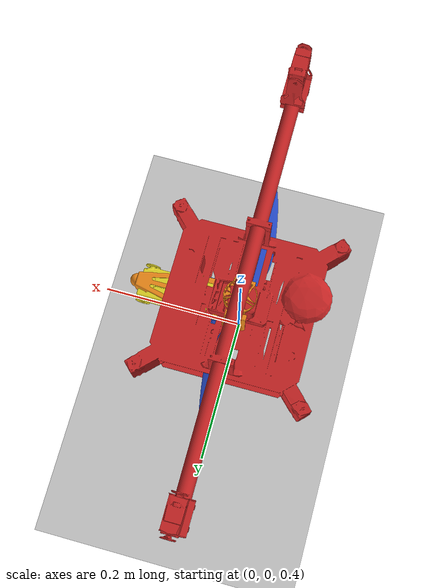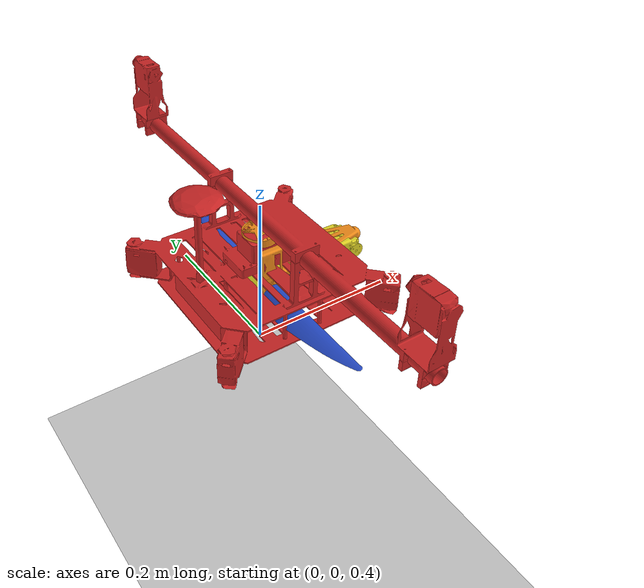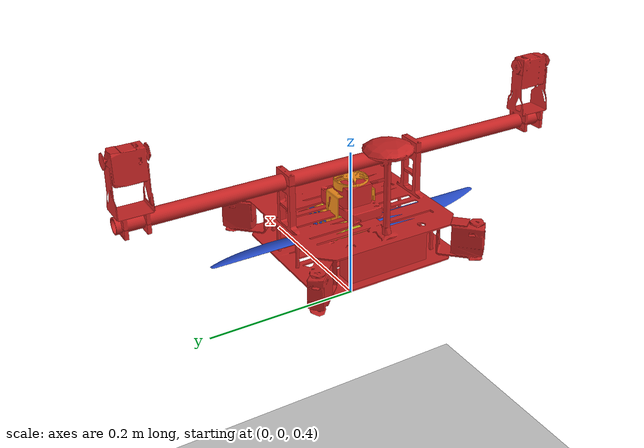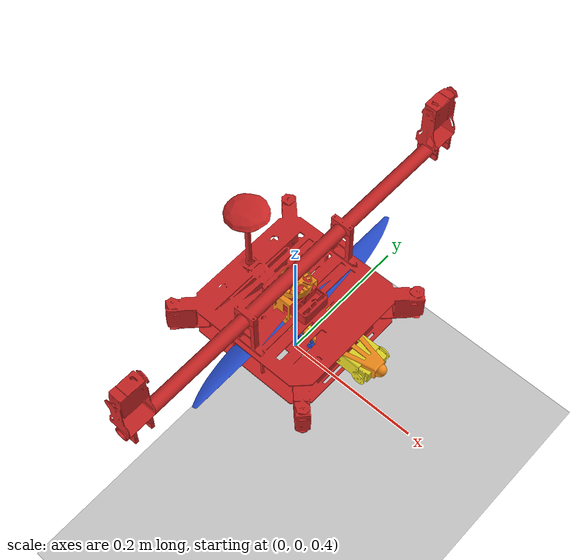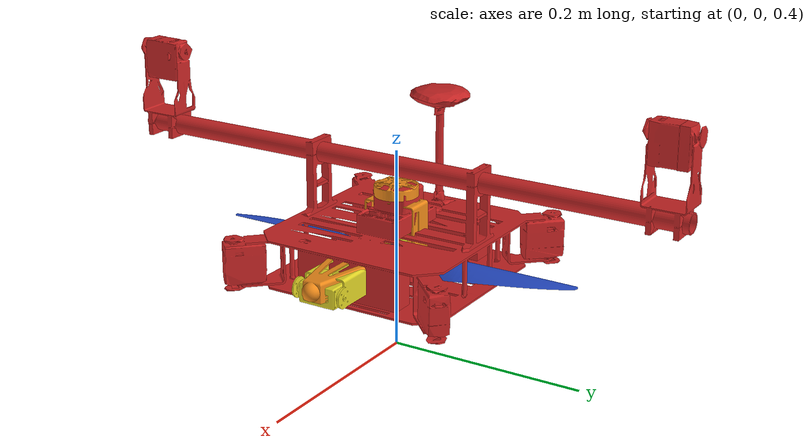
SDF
<?xml version="1.0" ?>
<sdf version="1.4">
  <world name="outdoor">

    <!-- Only one ROS interface plugin is required per world, as any other plugin can connect a Gazebo
         topic to a ROS topic (or vise versa). -->
    <plugin name="ros_interface_plugin" filename="librotors_gazebo_ros_interface_plugin.so"/>

    <physics type="ode">
      <ode>
        <solver>
          <type>quick</type>
          <iters>100</iters>
          <sor>1.0</sor>
        </solver>
        <constraints>
          <cfm>0.0</cfm>
          <erp>0.2</erp>
          <contact_max_correcting_vel>0.1</contact_max_correcting_vel>
          <contact_surface_layer>0.0</contact_surface_layer>
        </constraints>
      </ode>
      <real_time_update_rate>-1</real_time_update_rate> <!--  即模拟时间与实时的比率 -->
    </physics>
    <gravity>0 0 -9.8</gravity>

    <include>
      <uri>model://sun</uri>
    </include>

    <include>
      <uri>model://ground_plane</uri>
      <surface>
            <friction>
              <ode>
                <mu>1</mu>
                <mu2>0.9</mu2>
              </ode>
              <torsional>
                <ode/>
              </torsional>
            </friction>
            <contact>
              <ode/>
            </contact>
            <bounce/>
          </surface>
          <max_contacts>10</max_contacts>
    </include>

    <model name="usl_quadruped2_bicopter">
      <pose>0 0 0.5 0 0 0</pose>
      <include>
        <uri>model://usl_quadruped2_bicopter</uri>
        <name>usl_quadruped2_bicopter</name>
      </include>
    </model>

  </world>
</sdf>

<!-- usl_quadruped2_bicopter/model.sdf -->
<sdf version="1.5">
    <model name="usl_quadruped2_bicopter">

      <include>
        <uri>model://usl_quadruped2_bicopter_base</uri>
        <name>usl_quadruped2_bicopter_base</name>
        <pose>0 0 0.0 0 0 0</pose>
      </include>

      <include>
        <uri>model://usl_quadruped2_bicopter_coxa</uri>
        <name>quadruped2_coxa_0 </name>
        <pose relative_to= "quadruped2_coxa_0_joint" > 0 0 0 0 0 0</pose>
      </include>
      <joint name = "quadruped2_coxa_0_joint" type="revolute">
        <pose relative_to= 'usl_quadruped2_bicopter_base::base'> 0.11192 -0.11192 0.0 0.0 0.0 -0.7853981633974483</pose>
        <parent>usl_quadruped2_bicopter_base::base</parent>
        <child>quadruped2_coxa_0::base</child>
        <axis>
          <xyz>0 0 -1</xyz>
          <limit>
            <lower>-1.5707963267948966</lower>
            <upper>1.5707963267948966</upper>
          </limit>
          <dynamics>
            <spring_reference>0</spring_reference>
            <spring_stiffness>0</spring_stiffness>
          </dynamics>
        </axis>
        <physics>
          <ode>
            <limit>
              <cfm>0</cfm>
              <erp>0.2</erp>
            </limit>
          </ode>
        </physics>
      </joint>
      <plugin name = "quadruped2_coxa_0_plugin" filename='librotors_gazebo_motor_model.so'>
        <robotNamespace></robotNamespace>
        <jointName>quadruped2_coxa_0_joint </jointName>
        <linkName>quadruped2_coxa_0::base</linkName>
        <turningDirection>cw</turningDirection>
        <motorType>position</motorType>
        <commandSubTopic>/gazebo/command/coxa_pos</commandSubTopic>
        <motorNumber>0</motorNumber>
        <motorSpeedPubTopic>coxa_pos/0</motorSpeedPubTopic>
        <joint_control_pid>
          <p>15</p>
          <i>5</i>
          <d>0.6</d>
          <iMax>10</iMax>
          <iMin>-10</iMin>
          <cmdMax>50</cmdMax>
          <cmdMin>-50</cmdMin>
        </joint_control_pid>
      </plugin>

      <include>
        <uri>model://usl_quadruped2_bicopter_coxa</uri>
        <name>quadruped2_coxa_1 </name>
        <pose relative_to= "quadruped2_coxa_1_joint" > 0 0 0 0 0 0</pose>
      </include>
      <joint name = "quadruped2_coxa_1_joint" type="revolute">
        <pose relative_to= 'usl_quadruped2_bicopter_base::base'> -0.11192 -0.11192 0.0 0.0 0.0 -2.356194490192345</pose>
        <parent>usl_quadruped2_bicopter_base::base</parent>
        <child>quadruped2_coxa_1::base</child>
        <axis>
          <xyz>0 0 -1</xyz>
          <limit>
            <lower>-1.5707963267948966</lower>
            <upper>1.5707963267948966</upper>
          </limit>
          <dynamics>
            <spring_reference>0</spring_reference>
            <spring_stiffness>0</spring_stiffness>
          </dynamics>
        </axis>
        <physics>
          <ode>
            <limit>
              <cfm>0</cfm>
              <erp>0.2</erp>
            </limit>
          </ode>
        </physics>
      </joint>
      <plugin name = "quadruped2_coxa_1_plugin" filename='librotors_gazebo_motor_model.so'>
        <robotNamespace></robotNamespace>
        <jointName>quadruped2_coxa_1_joint </jointName>
        <linkName>quadruped2_coxa_1::base</linkName>
        <turningDirection>cw</turningDirection>
        <motorType>position</motorType>
        <commandSubTopic>/gazebo/command/coxa_pos</commandSubTopic>
        <motorNumber>1</motorNumber>
        <motorSpeedPubTopic>coxa_pos/1</motorSpeedPubTopic>
        <joint_control_pid>
          <p>15</p>
          <i>5</i>
          <d>0.6</d>
          <iMax>10</iMax>
          <iMin>-10</iMin>
          <cmdMax>50</cmdMax>
          <cmdMin>-50</cmdMin>
        </joint_control_pid>
      </plugin>

      <include>
        <uri>model://usl_quadruped2_bicopter_coxa</uri>
        <name>quadruped2_coxa_2 </name>
        <pose relative_to= "quadruped2_coxa_2_joint" > 0 0 0 0 0 0</pose>
      </include>
      <joint name = "quadruped2_coxa_2_joint" type="revolute">
        <pose relative_to= 'usl_quadruped2_bicopter_base::base'> -0.11192 0.11192 0.0 0.0 0.0 -3.9269908169872414</pose>
        <parent>usl_quadruped2_bicopter_base::base</parent>
        <child>quadruped2_coxa_2::base</child>
        <axis>
          <xyz>0 0 -1</xyz>
          <limit>
            <lower>-1.5707963267948966</lower>
            <upper>1.5707963267948966</upper>
          </limit>
          <dynamics>
            <spring_reference>0</spring_reference>
            <spring_stiffness>0</spring_stiffness>
          </dynamics>
        </axis>
        <physics>
          <ode>
            <limit>
              <cfm>0</cfm>
              <erp>0.2</erp>
            </limit>
          </ode>
        </physics>
      </joint>
      <plugin name = "quadruped2_coxa_2_plugin" filename='librotors_gazebo_motor_model.so'>
        <robotNamespace></robotNamespace>
        <jointName>quadruped2_coxa_2_joint </jointName>
        <linkName>quadruped2_coxa_2::base</linkName>
        <turningDirection>cw</turningDirection>
        <motorType>position</motorType>
        <commandSubTopic>/gazebo/command/coxa_pos</commandSubTopic>
        <motorNumber>2</motorNumber>
        <motorSpeedPubTopic>coxa_pos/2</motorSpeedPubTopic>
        <joint_control_pid>
          <p>15</p>
          <i>5</i>
          <d>0.6</d>
          <iMax>10</iMax>
          <iMin>-10</iMin>
          <cmdMax>50</cmdMax>
          <cmdMin>-50</cmdMin>
        </joint_control_pid>
      </plugin>

      <include>
        <uri>model://usl_quadruped2_bicopter_coxa</uri>
        <name>quadruped2_coxa_3 </name>
        <pose relative_to= "quadruped2_coxa_3_joint" > 0 0 0 0 0 0</pose>
      </include>
      <joint name = "quadruped2_coxa_3_joint" type="revolute">
        <pose relative_to= 'usl_quadruped2_bicopter_base::base'> 0.11192 0.11192 0.0 0.0 0.0 -5.497787143782138</pose>
        <parent>usl_quadruped2_bicopter_base::base</parent>
        <child>quadruped2_coxa_3::base</child>
        <axis>
          <xyz>0 0 -1</xyz>
          <limit>
            <lower>-1.5707963267948966</lower>
            <upper>1.5707963267948966</upper>
          </limit>
          <dynamics>
            <spring_reference>0</spring_reference>
            <spring_stiffness>0</spring_stiffness>
          </dynamics>
        </axis>
        <physics>
          <ode>
            <limit>
              <cfm>0</cfm>
              <erp>0.2</erp>
            </limit>
          </ode>
        </physics>
      </joint>
      <plugin name = "quadruped2_coxa_3_plugin" filename='librotors_gazebo_motor_model.so'>
        <robotNamespace></robotNamespace>
        <jointName>quadruped2_coxa_3_joint </jointName>
        <linkName>quadruped2_coxa_3::base</linkName>
        <turningDirection>cw</turningDirection>
        <motorType>position</motorType>
        <commandSubTopic>/gazebo/command/coxa_pos</commandSubTopic>
        <motorNumber>3</motorNumber>
        <motorSpeedPubTopic>coxa_pos/3</motorSpeedPubTopic>
        <joint_control_pid>
          <p>15</p>
          <i>5</i>
          <d>0.6</d>
          <iMax>10</iMax>
          <iMin>-10</iMin>
          <cmdMax>50</cmdMax>
          <cmdMin>-50</cmdMin>
        </joint_control_pid>
      </plugin>

    <include>
      <uri>model://usl_quadruped2_bicopter_femur</uri>
      <name>quadruped2_femur_0</name>
      <pose relative_to= "quadruped2_femur_0_joint" > 0 0 0 0 0 0</pose>
    </include>
    <joint name = "quadruped2_femur_0_joint" type="revolute">
      <pose relative_to= "quadruped2_coxa_0::base" > 0.0471 0.0 0.0 0.0 0.0 0</pose>
      <parent>quadruped2_coxa_0::base</parent>
      <child>quadruped2_femur_0::base</child>
      <axis>
        <xyz>0 1 0</xyz>
        <limit>
          <lower>-1.5707963267948966</lower>
          <upper>1.5707963267948966</upper>
        </limit>
        <dynamics>
          <spring_stiffness>0</spring_stiffness>
          <spring_reference>0</spring_reference>
        </dynamics>
      </axis>
      <physics>
        <ode>
          <limit>
            <cfm>0</cfm>
            <erp>0.2</erp>
          </limit>
        </ode>
      </physics>
    </joint>
    <plugin name = "quadruped2_femur_0_plugin" filename='librotors_gazebo_motor_model.so'>
      <robotNamespace></robotNamespace>
      <jointName>quadruped2_femur_0_joint </jointName>
      <linkName>quadruped2_femur_0::base</linkName>
      <turningDirection>cw</turningDirection>
      <motorType>position</motorType>
      <commandSubTopic>/gazebo/command/femur_pos</commandSubTopic>
      <motorNumber>0</motorNumber>
      <motorSpeedPubTopic>femur_pos/0</motorSpeedPubTopic>
      <joint_control_pid>
        <p>10</p>
        <i>3</i>
        <d>0.6</d>
        <iMax>10</iMax>
        <iMin>-10</iMin>
        <cmdMax>50</cmdMax>
        <cmdMin>-50</cmdMin>
      </joint_control_pid>
    </plugin>

    <include>
      <uri>model://usl_quadruped2_bicopter_femur</uri>
      <name>quadruped2_femur_1</name>
      <pose relative_to= "quadruped2_femur_1_joint" > 0 0 0 0 0 0</pose>
    </include>
    <joint name = "quadruped2_femur_1_joint" type="revolute">
      <pose relative_to= "quadruped2_coxa_1::base" > 0.0471 0.0 0.0 0.0 0.0 0</pose>
      <parent>quadruped2_coxa_1::base</parent>
      <child>quadruped2_femur_1::base</child>
      <axis>
        <xyz>0 1 0</xyz>
        <limit>
          <lower>-1.5707963267948966</lower>
          <upper>1.5707963267948966</upper>
        </limit>
        <dynamics>
          <spring_stiffness>0</spring_stiffness>
          <spring_reference>0</spring_reference>
        </dynamics>
      </axis>
      <physics>
        <ode>
          <limit>
            <cfm>0</cfm>
            <erp>0.2</erp>
          </limit>
        </ode>
      </physics>
    </joint>
    <plugin name = "quadruped2_femur_1_plugin" filename='librotors_gazebo_motor_model.so'>
      <robotNamespace></robotNamespace>
      <jointName>quadruped2_femur_1_joint </jointName>
      <linkName>quadruped2_femur_1::base</linkName>
      <turningDirection>cw</turningDirection>
      <motorType>position</motorType>
      <commandSubTopic>/gazebo/command/femur_pos</commandSubTopic>
      <motorNumber>1</motorNumber>
      <motorSpeedPubTopic>femur_pos/1</motorSpeedPubTopic>
      <joint_control_pid>
        <p>10</p>
        <i>3</i>
        <d>0.6</d>
        <iMax>10</iMax>
        <iMin>-10</iMin>
        <cmdMax>50</cmdMax>
        <cmdMin>-50</cmdMin>
      </joint_control_pid>
    </plugin>

    <include>
      <uri>model://usl_quadruped2_bicopter_femur</uri>
      <name>quadruped2_femur_2</name>
      <pose relative_to= "quadruped2_femur_2_joint" > 0 0 0 0 0 0</pose>
    </include>
    <joint name = "quadruped2_femur_2_joint" type="revolute">
      <pose relative_to= "quadruped2_coxa_2::base" > 0.0471 0.0 0.0 0.0 0.0 0</pose>
      <parent>quadruped2_coxa_2::base</parent>
      <child>quadruped2_femur_2::base</child>
      <axis>
        <xyz>0 1 0</xyz>
        <limit>
          <lower>-1.5707963267948966</lower>
          <upper>1.5707963267948966</upper>
        </limit>
        <dynamics>
          <spring_stiffness>0</spring_stiffness>
          <spring_reference>0</spring_reference>
        </dynamics>
      </axis>
      <physics>
        <ode>
          <limit>
            <cfm>0</cfm>
            <erp>0.2</erp>
          </limit>
        </ode>
      </physics>
    </joint>
    <plugin name = "quadruped2_femur_2_plugin" filename='librotors_gazebo_motor_model.so'>
      <robotNamespace></robotNamespace>
      <jointName>quadruped2_femur_2_joint </jointName>
      <linkName>quadruped2_femur_2::base</linkName>
      <turningDirection>cw</turningDirection>
      <motorType>position</motorType>
      <commandSubTopic>/gazebo/command/femur_pos</commandSubTopic>
      <motorNumber>2</motorNumber>
      <motorSpeedPubTopic>femur_pos/2</motorSpeedPubTopic>
      <joint_control_pid>
        <p>10</p>
        <i>3</i>
        <d>0.6</d>
        <iMax>10</iMax>
        <iMin>-10</iMin>
        <cmdMax>50</cmdMax>
        <cmdMin>-50</cmdMin>
      </joint_control_pid>
    </plugin>

    <include>
      <uri>model://usl_quadruped2_bicopter_femur</uri>
      <name>quadruped2_femur_3</name>
      <pose relative_to= "quadruped2_femur_3_joint" > 0 0 0 0 0 0</pose>
    </include>
    <joint name = "quadruped2_femur_3_joint" type="revolute">
      <pose relative_to= "quadruped2_coxa_3::base" > 0.0471 0.0 0.0 0.0 0.0 0</pose>
      <parent>quadruped2_coxa_3::base</parent>
      <child>quadruped2_femur_3::base</child>
      <axis>
        <xyz>0 1 0</xyz>
        <limit>
          <lower>-1.5707963267948966</lower>
          <upper>1.5707963267948966</upper>
        </limit>
        <dynamics>
          <spring_stiffness>0</spring_stiffness>
          <spring_reference>0</spring_reference>
        </dynamics>
      </axis>
      <physics>
        <ode>
          <limit>
            <cfm>0</cfm>
            <erp>0.2</erp>
          </limit>
        </ode>
      </physics>
    </joint>
    <plugin name = "quadruped2_femur_3_plugin" filename='librotors_gazebo_motor_model.so'>
      <robotNamespace></robotNamespace>
      <jointName>quadruped2_femur_3_joint </jointName>
      <linkName>quadruped2_femur_3::base</linkName>
      <turningDirection>cw</turningDirection>
      <motorType>position</motorType>
      <commandSubTopic>/gazebo/command/femur_pos</commandSubTopic>
      <motorNumber>3</motorNumber>
      <motorSpeedPubTopic>femur_pos/3</motorSpeedPubTopic>
      <joint_control_pid>
        <p>10</p>
        <i>3</i>
        <d>0.6</d>
        <iMax>10</iMax>
        <iMin>-10</iMin>
        <cmdMax>50</cmdMax>
        <cmdMin>-50</cmdMin>
      </joint_control_pid>
    </plugin>

  <include>
    <uri>model://usl_quadruped2_bicopter_tibia</uri>
    <name>quadruped2_tibia_0</name>
    <pose relative_to= "quadruped2_tibia_0_joint" > 0 0 0 0 0 0</pose>
  </include>
  <joint name = "quadruped2_tibia_0_joint" type="revolute">
    <pose relative_to= "quadruped2_femur_0::base" >0.128 0.0 0.0 0.0 1.5707963267948966 0</pose>
    <parent>quadruped2_femur_0::base</parent>
    <child>quadruped2_tibia_0::base</child>
    <axis>
      <xyz>0 1 0</xyz>
      <limit>
        <lower>-3.141592653589793</lower>
        <upper>3.141592653589793</upper>
        <effort>500</effort>
        <velocity>2</velocity>
      </limit>
      <dynamics>
        <spring_stiffness>0</spring_stiffness>
        <spring_reference>0</spring_reference>
      </dynamics>
    </axis>
    <physics>
      <ode>
        <limit>
          <cfm>0</cfm>
          <erp>0.2</erp>
        </limit>
      </ode>
    </physics>
  </joint>
  <plugin name = "quadruped2_tibia_0_plugin" filename='librotors_gazebo_motor_model.so'>
    <robotNamespace></robotNamespace>
    <jointName>quadruped2_tibia_0_joint</jointName>
    <linkName>quadruped2_tibia_0::base</linkName>
    <turningDirection>cw</turningDirection>
    <motorType>position</motorType>
    <commandSubTopic>/gazebo/command/tibia_pos</commandSubTopic>
    <motorNumber>0</motorNumber>
    <motorSpeedPubTopic>tibia_pos/0</motorSpeedPubTopic>
    <joint_control_pid>
      <p>10</p>
      <i>3</i>
      <d>0.6</d>
      <iMax>10</iMax>
      <iMin>-10</iMin>
      <cmdMax>50</cmdMax>
      <cmdMin>-50</cmdMin>
    </joint_control_pid>
  </plugin>

  <include>
    <uri>model://usl_quadruped2_bicopter_tibia</uri>
    <name>quadruped2_tibia_1</name>
    <pose relative_to= "quadruped2_tibia_1_joint" > 0 0 0 0 0 0</pose>
  </include>
  <joint name = "quadruped2_tibia_1_joint" type="revolute">
    <pose relative_to= "quadruped2_femur_1::base" >0.128 0.0 0.0 0.0 1.5707963267948966 0</pose>
    <parent>quadruped2_femur_1::base</parent>
    <child>quadruped2_tibia_1::base</child>
    <axis>
      <xyz>0 1 0</xyz>
      <limit>
        <lower>-3.141592653589793</lower>
        <upper>3.141592653589793</upper>
        <effort>500</effort>
        <velocity>2</velocity>
      </limit>
      <dynamics>
        <spring_stiffness>0</spring_stiffness>
        <spring_reference>0</spring_reference>
      </dynamics>
    </axis>
    <physics>
      <ode>
        <limit>
          <cfm>0</cfm>
          <erp>0.2</erp>
        </limit>
      </ode>
    </physics>
  </joint>
  <plugin name = "quadruped2_tibia_1_plugin" filename='librotors_gazebo_motor_model.so'>
    <robotNamespace></robotNamespace>
    <jointName>quadruped2_tibia_1_joint</jointName>
    <linkName>quadruped2_tibia_1::base</linkName>
    <turningDirection>cw</turningDirection>
    <motorType>position</motorType>
    <commandSubTopic>/gazebo/command/tibia_pos</commandSubTopic>
    <motorNumber>1</motorNumber>
    <motorSpeedPubTopic>tibia_pos/1</motorSpeedPubTopic>
    <joint_control_pid>
      <p>10</p>
      <i>3</i>
      <d>0.6</d>
      <iMax>10</iMax>
      <iMin>-10</iMin>
      <cmdMax>50</cmdMax>
      <cmdMin>-50</cmdMin>
    </joint_control_pid>
  </plugin>

  <include>
    <uri>model://usl_quadruped2_bicopter_tibia</uri>
    <name>quadruped2_tibia_2</name>
    <pose relative_to= "quadruped2_tibia_2_joint" > 0 0 0 0 0 0</pose>
  </include>
  <joint name = "quadruped2_tibia_2_joint" type="revolute">
    <pose relative_to= "quadruped2_femur_2::base" >0.128 0.0 0.0 0.0 1.5707963267948966 0</pose>
    <parent>quadruped2_femur_2::base</parent>
    <child>quadruped2_tibia_2::base</child>
    <axis>
      <xyz>0 1 0</xyz>
      <limit>
        <lower>-3.141592653589793</lower>
        <upper>3.141592653589793</upper>
        <effort>500</effort>
        <velocity>2</velocity>
      </limit>
      <dynamics>
        <spring_stiffness>0</spring_stiffness>
        <spring_reference>0</spring_reference>
      </dynamics>
    </axis>
    <physics>
      <ode>
        <limit>
          <cfm>0</cfm>
          <erp>0.2</erp>
        </limit>
      </ode>
    </physics>
  </joint>
  <plugin name = "quadruped2_tibia_2_plugin" filename='librotors_gazebo_motor_model.so'>
    <robotNamespace></robotNamespace>
    <jointName>quadruped2_tibia_2_joint</jointName>
    <linkName>quadruped2_tibia_2::base</linkName>
    <turningDirection>cw</turningDirection>
    <motorType>position</motorType>
    <commandSubTopic>/gazebo/command/tibia_pos</commandSubTopic>
    <motorNumber>2</motorNumber>
    <motorSpeedPubTopic>tibia_pos/2</motorSpeedPubTopic>
    <joint_control_pid>
      <p>10</p>
      <i>3</i>
      <d>0.6</d>
      <iMax>10</iMax>
      <iMin>-10</iMin>
      <cmdMax>50</cmdMax>
      <cmdMin>-50</cmdMin>
    </joint_control_pid>
  </plugin>

  <include>
    <uri>model://usl_quadruped2_bicopter_tibia</uri>
    <name>quadruped2_tibia_3</name>
    <pose relative_to= "quadruped2_tibia_3_joint" > 0 0 0 0 0 0</pose>
  </include>
  <joint name = "quadruped2_tibia_3_joint" type="revolute">
    <pose relative_to= "quadruped2_femur_3::base" >0.128 0.0 0.0 0.0 1.5707963267948966 0</pose>
    <parent>quadruped2_femur_3::base</parent>
    <child>quadruped2_tibia_3::base</child>
    <axis>
      <xyz>0 1 0</xyz>
      <limit>
        <lower>-3.141592653589793</lower>
        <upper>3.141592653589793</upper>
        <effort>500</effort>
        <velocity>2</velocity>
      </limit>
      <dynamics>
        <spring_stiffness>0</spring_stiffness>
        <spring_reference>0</spring_reference>
      </dynamics>
    </axis>
    <physics>
      <ode>
        <limit>
          <cfm>0</cfm>
          <erp>0.2</erp>
        </limit>
      </ode>
    </physics>
  </joint>
  <plugin name = "quadruped2_tibia_3_plugin" filename='librotors_gazebo_motor_model.so'>
    <robotNamespace></robotNamespace>
    <jointName>quadruped2_tibia_3_joint</jointName>
    <linkName>quadruped2_tibia_3::base</linkName>
    <turningDirection>cw</turningDirection>
    <motorType>position</motorType>
    <commandSubTopic>/gazebo/command/tibia_pos</commandSubTopic>
    <motorNumber>3</motorNumber>
    <motorSpeedPubTopic>tibia_pos/3</motorSpeedPubTopic>
    <joint_control_pid>
      <p>10</p>
      <i>3</i>
      <d>0.6</d>
      <iMax>10</iMax>
      <iMin>-10</iMin>
      <cmdMax>50</cmdMax>
      <cmdMin>-50</cmdMin>
    </joint_control_pid>
  </plugin>

<include>
  <uri>model://usl_quadruped2_bicopter_tilt</uri>
  <name>usl_quadruped2_bicopter_tilt_0</name>
  <pose relative_to= "usl_quadruped2_bicopter_tilt_0_joint" > 0 0 0 0 0 0</pose>
</include>
<joint name = "usl_quadruped2_bicopter_tilt_0_joint" type="revolute">
  <pose relative_to= 'usl_quadruped2_bicopter_base::base'> 0.0 -0.2789 0.1631 0 0 0</pose>
  <parent>usl_quadruped2_bicopter_base::base</parent>
  <child>usl_quadruped2_bicopter_tilt_0::base</child>
  <axis>
    <xyz>0 -1 0</xyz>
    <limit>
      <lower>-1e+16</lower>
      <upper>1e+16</upper>
    </limit>
    <dynamics>
      <damping>0.004</damping>
    </dynamics>
  </axis>
  <physics>
    <ode>
      <implicit_spring_damper>1</implicit_spring_damper>
    </ode>
  </physics>
</joint>
<plugin name = "tilt_0_plugin" filename='librotors_gazebo_motor_model.so'>
  <robotNamespace></robotNamespace>
  <jointName>usl_quadruped2_bicopter_tilt_0_joint </jointName>
  <linkName>usl_quadruped2_bicopter_tilt_0::base</linkName>
  <turningDirection>ccw</turningDirection>
  <motorType>position</motorType>
  <commandSubTopic>/gazebo/command/tilt_pos</commandSubTopic>
  <motorNumber>0</motorNumber>
  <motorSpeedPubTopic>tilt_pos/0</motorSpeedPubTopic>
  <joint_control_pid>
    <p>0.4</p>
    <i>0.1</i>
    <d>0.2</d>
    <iMax>10</iMax>
    <iMin>-10</iMin>
    <cmdMax>50</cmdMax>
    <cmdMin>-50</cmdMin>
  </joint_control_pid>
</plugin>

<include>
  <uri>model://usl_quadruped2_bicopter_tilt</uri>
  <name>usl_quadruped2_bicopter_tilt_1</name>
  <pose relative_to= "usl_quadruped2_bicopter_tilt_1_joint" > 0 0 0 0 0 0</pose>
</include>
<joint name = "usl_quadruped2_bicopter_tilt_1_joint" type="revolute">
  <pose relative_to= 'usl_quadruped2_bicopter_base::base'> 0.0 0.2789 0.1631 0 0 3.141592653589793</pose>
  <parent>usl_quadruped2_bicopter_base::base</parent>
  <child>usl_quadruped2_bicopter_tilt_1::base</child>
  <axis>
    <xyz>0 -1 0</xyz>
    <limit>
      <lower>-1e+16</lower>
      <upper>1e+16</upper>
    </limit>
    <dynamics>
      <damping>0.004</damping>
    </dynamics>
  </axis>
  <physics>
    <ode>
      <implicit_spring_damper>1</implicit_spring_damper>
    </ode>
  </physics>
</joint>
<plugin name = "tilt_1_plugin" filename='librotors_gazebo_motor_model.so'>
  <robotNamespace></robotNamespace>
  <jointName>usl_quadruped2_bicopter_tilt_1_joint </jointName>
  <linkName>usl_quadruped2_bicopter_tilt_1::base</linkName>
  <turningDirection>ccw</turningDirection>
  <motorType>position</motorType>
  <commandSubTopic>/gazebo/command/tilt_pos</commandSubTopic>
  <motorNumber>1</motorNumber>
  <motorSpeedPubTopic>tilt_pos/1</motorSpeedPubTopic>
  <joint_control_pid>
    <p>0.4</p>
    <i>0.1</i>
    <d>0.2</d>
    <iMax>10</iMax>
    <iMin>-10</iMin>
    <cmdMax>50</cmdMax>
    <cmdMin>-50</cmdMin>
  </joint_control_pid>
</plugin>

<include>
  <uri>model://usl_quadruped2_bicopter_prop</uri>
  <name>usl_quadruped2_bicopter_prop_0</name>
  <pose relative_to= "usl_quadruped2_bicopter_prop_0_joint" > 0 0 0 0 0 0</pose>
</include>
<joint name = "usl_quadruped2_bicopter_prop_0_joint" type="revolute">
  <pose relative_to= "usl_quadruped2_bicopter_tilt_0::base" > 0.0 -0.0 0.07248 0 0 0</pose>
  <parent>usl_quadruped2_bicopter_tilt_0::base</parent>
  <child>usl_quadruped2_bicopter_prop_0::base</child>
  <axis>
    <xyz>0 0 1</xyz>
    <limit>
      <lower>-1e+16</lower>
      <upper>1e+16</upper>
    </limit>
    <dynamics>
      <damping>0.004</damping>
    </dynamics>
  </axis>
  <physics>
    <ode>
      <implicit_spring_damper>1</implicit_spring_damper>
    </ode>
  </physics>
</joint>
<plugin name = "prop_0_plugin" filename='librotors_gazebo_motor_model.so'>
  <robotNamespace></robotNamespace>
  <jointName>usl_quadruped2_bicopter_prop_0_joint </jointName>
  <linkName>usl_quadruped2_bicopter_prop_0::base</linkName>
  <turningDirection>cw</turningDirection>
  <timeConstantUp>0.0125</timeConstantUp>
  <timeConstantDown>0.025</timeConstantDown>
  <maxRotVelocity>1000</maxRotVelocity>
  <motorConstant>1.599e-05</motorConstant>
  <momentConstant>4.599e-07</momentConstant>
  <commandSubTopic>/gazebo/command/prop_speed</commandSubTopic>
  <motorNumber>0</motorNumber>
  <rotorDragCoefficient>0.000806428</rotorDragCoefficient>
  <rollingMomentCoefficient>1e-06</rollingMomentCoefficient>
  <motorSpeedPubTopic>prop_speed/0</motorSpeedPubTopic>
  <rotorVelocitySlowdownSim>10</rotorVelocitySlowdownSim>
</plugin>

<include>
  <uri>model://usl_quadruped2_bicopter_prop</uri>
  <name>usl_quadruped2_bicopter_prop_1</name>
  <pose relative_to= "usl_quadruped2_bicopter_prop_1_joint" > 0 0 0 0 0 0</pose>
</include>
<joint name = "usl_quadruped2_bicopter_prop_1_joint" type="revolute">
  <pose relative_to= "usl_quadruped2_bicopter_tilt_1::base" > 0.0 0.0 0.07248 0 0 0</pose>
  <parent>usl_quadruped2_bicopter_tilt_1::base</parent>
  <child>usl_quadruped2_bicopter_prop_1::base</child>
  <axis>
    <xyz>0 0 1</xyz>
    <limit>
      <lower>-1e+16</lower>
      <upper>1e+16</upper>
    </limit>
    <dynamics>
      <damping>0.004</damping>
    </dynamics>
  </axis>
  <physics>
    <ode>
      <implicit_spring_damper>1</implicit_spring_damper>
    </ode>
  </physics>
</joint>
<plugin name = "prop_1_plugin" filename='librotors_gazebo_motor_model.so'>
  <robotNamespace></robotNamespace>
  <jointName>usl_quadruped2_bicopter_prop_1_joint </jointName>
  <linkName>usl_quadruped2_bicopter_prop_1::base</linkName>
  <turningDirection>ccw</turningDirection>
  <timeConstantUp>0.0125</timeConstantUp>
  <timeConstantDown>0.025</timeConstantDown>
  <maxRotVelocity>1000</maxRotVelocity>
  <motorConstant>1.599e-05</motorConstant>
  <momentConstant>4.599e-07</momentConstant>
  <commandSubTopic>/gazebo/command/prop_speed</commandSubTopic>
  <motorNumber>1</motorNumber>
  <rotorDragCoefficient>0.000806428</rotorDragCoefficient>
  <rollingMomentCoefficient>1e-06</rollingMomentCoefficient>
  <motorSpeedPubTopic>prop_speed/1</motorSpeedPubTopic>
  <rotorVelocitySlowdownSim>10</rotorVelocitySlowdownSim>
</plugin>

<plugin name="ArduRotorQuadruped" filename="libArduRotorQuadrupedBicopter.so">
  <fdm_addr>127.0.0.1</fdm_addr>
  <fdm_port_in>9002</fdm_port_in>
  <fdm_port_out>9003</fdm_port_out>
  <modelXYZToAirplaneXForwardZDown>0 0 0 3.141593 0 0</modelXYZToAirplaneXForwardZDown>
  <gazeboXYZToNED>0 0 0 3.141593 0 0</gazeboXYZToNED>
  <motor_num>2</motor_num>
  <servo_num>2</servo_num>
  <coxa_num>4</coxa_num>
  <femur_num>4</femur_num>
  <tibia_num>4</tibia_num>
  <motor_pub>/gazebo/command/prop_speed</motor_pub>
  <servo_pub>/gazebo/command/tilt_pos</servo_pub>
  <coxa_pub>/gazebo/command/coxa_pos</coxa_pub>
  <femur_pub>/gazebo/command/femur_pos</femur_pub>
  <tibia_pub>/gazebo/command/tibia_pos</tibia_pub>
  <imuName>usl_quadruped2_bicopter_base::imu_link::imu_sensor</imuName>
  <connectionTimeoutMaxCount>5</connectionTimeoutMaxCount>
</plugin>
</model>
</sdf>

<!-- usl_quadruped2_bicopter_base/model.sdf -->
<sdf version="1.5">
    <model name="usl_quadruped2_bicopter_base">
      <link name="base">
      <pose>0 0 0 0 0 0</pose>
      <inertial>
        <pose>0 0 0 0 0 0</pose>
        <mass>0.5</mass>
        <inertia>
          <ixx>0.2</ixx>
          <iyy>0.2</iyy>
          <izz>0.2</izz>
          <ixy>0</ixy>
          <ixz>0</ixz>
          <iyz>0</iyz>
        </inertia>
      </inertial>
      <collision name="base_collision">
        <pose>0 0 0  0 0 0</pose>
        <geometry>
          <mesh>
            <uri>model://usl_quadruped2_bicopter_base/meshes/body.dae</uri>
          </mesh>
        </geometry>
        <surface>
          <contact>
            <ode/>
          </contact>
          <friction>
            <ode/>
          </friction>
        </surface>
      </collision>
      <visual name="base_visual">
        <geometry>
          <mesh>
            <uri>model://usl_quadruped2_bicopter_base/meshes/body.dae</uri>
          </mesh>
        </geometry>
        <material>
          <script>
            <name>Gazebo/Red</name>
          </script>
        </material>
      </visual>
    </link>
    <link name='imu_link'>
    <inertial>
      <pose>0 0 0 0 0 0</pose>
      <mass>0.15</mass>
      <inertia>
        <ixx>0.00001</ixx>
        <ixy>0</ixy>
        <ixz>0</ixz>
        <iyy>0.00002</iyy>
        <iyz>0</iyz>
        <izz>0.00002</izz>
      </inertia>
    </inertial>
    <sensor name="imu_sensor" type="imu">
      <pose>0 0 0 3.141593 0 0</pose>
      <always_on>1</always_on>
      <update_rate>1000.0</update_rate>
      <topic>__default_topic__</topic>
    </sensor>
  </link>
  <joint name='imu_joint' type='revolute'>
    <child>imu_link</child>
    <parent>base</parent>
    <axis>
      <xyz>0 0 1</xyz>
      <limit>
        <lower>-0.0001</lower>
        <upper>0.00001</upper>
        <effort>0</effort>
        <velocity>0</velocity>
      </limit>
      <dynamics>
        <damping>1.0</damping>
      </dynamics>
      <use_parent_model_frame>1</use_parent_model_frame>
    </axis>
    <physics>
      <ode>
        <implicit_spring_damper>1</implicit_spring_damper>
      </ode>
    </physics>
  </joint>

</model>
</sdf>

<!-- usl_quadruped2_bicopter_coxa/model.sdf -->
<sdf version="1.5">
    <model name="usl_quadruped2_bicopter_coxa">
      <link name="base">
      <pose>0 0 0 0 0 0</pose>
      <inertial>
        <pose>0 0 0 0 0 0</pose>
        <mass>0.1</mass>
        <inertia>
          <ixx>0.001</ixx>
          <iyy>0.001</iyy>
          <izz>0.001</izz>
          <ixy>0</ixy>
          <ixz>0</ixz>
          <iyz>0</iyz>
        </inertia>
      </inertial>
      <collision name="usl_quadruped2_bicopter_coxa_collision">
        <pose>0 0 0  0 0 0</pose>
        <geometry>
          <box>
            <size>0.01 0.01 0.01</size>
          </box>
        </geometry>
        <surface>
          <friction>
            <ode>
              <mu2>1</mu2>
              <fdir1>1 0 0</fdir1>
              <mu1>1.0</mu1>
            </ode>
          </friction>
          <contact>
            <ode>
              <kp>1e+15</kp>
              <kd>1e+13</kd>
            </ode>
          </contact>
        </surface>
      </collision>
      <visual name="base_visual">
        <geometry>
          <mesh>
            <uri>model://usl_quadruped2_bicopter_coxa/meshes/coxa.dae</uri>
          </mesh>
        </geometry>
        <material>
          <script>
            <name>Gazebo/Blue</name>
          </script>
        </material>
      </visual>
    </link>

  </model>
</sdf>

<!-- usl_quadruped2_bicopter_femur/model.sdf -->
<sdf version="1.5">
    <model name="usl_quadruped2_bicopter_femur">
      <link name="base">
      <pose>0 0 0  0 0 0</pose>
      <inertial>
        <pose>0 0 0 0 0 0</pose>
        <mass>0.1</mass>
        <inertia>
          <ixx>0.001</ixx>
          <iyy>0.001</iyy>
          <izz>0.001</izz>
          <ixy>0</ixy>
          <ixz>0</ixz>
          <iyz>0</iyz>
        </inertia>
      </inertial>
      <collision name="base_collision">
        <pose>0 0 0  0 0 0</pose>
        <geometry>
          <box>
            <size>0.01 0.01 0.01</size>
          </box>
        </geometry>
        <surface>
          <friction>
            <ode>
              <mu2>1</mu2>
              <fdir1>1 0 0</fdir1>
              <mu1>1.0</mu1>
            </ode>
          </friction>
          <contact>
            <ode>
              <kp>1e+15</kp>
              <kd>1e+13</kd>
            </ode>
          </contact>
        </surface>
      </collision>
      <visual name="base_visual">
        <geometry>
          <mesh>
            <uri>model://usl_quadruped2_bicopter_femur/meshes/femur.dae</uri>
          </mesh>
        </geometry>
        <material>
          <script>
            <name>Gazebo/Yellow</name>
          </script>
        </material>
      </visual>
    </link>

  </model>
</sdf>

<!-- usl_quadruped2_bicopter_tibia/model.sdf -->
<sdf version="1.5">
    <model name="usl_quadruped2_bicopter_tibia">
      <link name="base">
      <pose>0 0 0 0 0 0</pose>
      <inertial>
        <pose>0 0 0 0 0 0</pose>
        <mass>0.1</mass>
        <inertia>
          <ixx>0.001</ixx>
          <iyy>0.001</iyy>
          <izz>0.001</izz>
          <ixy>0</ixy>
          <ixz>0</ixz>
          <iyz>0</iyz>
        </inertia>
      </inertial>
      <collision name="base_collision">
        <pose>0 0 0  0 0 0</pose>
        <geometry>
          <mesh>
            <uri>model://usl_quadruped2_bicopter_tibia/meshes/tibia.dae</uri>
          </mesh>
        </geometry>
        <surface>
          <friction>
            <ode>
              <mu>1</mu>
              <mu2>1</mu2>
            </ode>
          </friction>
          <contact>
            <ode/>
          </contact>
        </surface>
      </collision>
      <visual name="base_visual">
        <geometry>
          <mesh>
            <uri>model://usl_quadruped2_bicopter_tibia/meshes/tibia.dae</uri>
          </mesh>
        </geometry>
        <material>
          <script>
            <name>Gazebo/Orange</name>
          </script>
        </material>
      </visual>
    </link>

  </model>
</sdf>

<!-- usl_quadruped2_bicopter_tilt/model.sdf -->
<sdf version="1.5">
    <model name="usl_quadruped2_bicopter_tilt">
      <link name="base">
      <pose>0 0 0 0 0 0</pose>
      <inertial>
        <pose>0 0 0 0 0 0</pose>
        <mass>0.001</mass>
        <inertia>
          <ixx>0.001</ixx>
          <iyy>0.001</iyy>
          <izz>0.001</izz>
          <ixy>0</ixy>
          <ixz>0</ixz>
          <iyz>0</iyz>
        </inertia>
      </inertial>
      <collision name="base_collision">
        <pose>0 0 0  0 0 0</pose>
        <geometry>
          <mesh>
            <uri>model://usl_quadruped2_bicopter_tilt/meshes/tilt.dae</uri>
          </mesh>
        </geometry>
        <surface>
          <friction>
            <ode>
              <mu>1</mu>
              <mu2>1</mu2>
            </ode>
          </friction>
          <contact>
            <ode/>
          </contact>
        </surface>
      </collision>
      <visual name="base_visual">
        <geometry>
          <mesh>
            <uri>model://usl_quadruped2_bicopter_tilt/meshes/tilt.dae</uri>
          </mesh>
        </geometry>
        <material>
          <script>
            <name>Gazebo/Orange</name>
          </script>
        </material>
      </visual>
    </link>

  </model>
</sdf>

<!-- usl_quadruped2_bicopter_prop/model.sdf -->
<sdf version="1.5">
    <model name="usl_quadruped2_bicopter_prop">
      <link name="base">
      <pose>0 0 0 0 0 0</pose>
      <inertial>
        <pose>0 0 0 0 0 0</pose>
        <mass>0.001</mass>
        <inertia>
          <ixx>0.001</ixx>
          <iyy>0.001</iyy>
          <izz>0.001</izz>
          <ixy>0</ixy>
          <ixz>0</ixz>
          <iyz>0</iyz>
        </inertia>
      </inertial>
      <collision name="base_collision">
        <pose>0 0 0  0 0 0</pose>
        <geometry>
          <mesh>
            <uri>model://usl_quadruped2_bicopter_prop/meshes/prop.dae</uri>
          </mesh>
        </geometry>
        <surface>
          <friction>
            <ode>
              <mu>1</mu>
              <mu2>1</mu2>
            </ode>
          </friction>
          <contact>
            <ode/>
          </contact>
        </surface>
      </collision>
      <visual name="base_visual">
        <geometry>
          <mesh>
            <uri>model://usl_quadruped2_bicopter_prop/meshes/prop.dae</uri>
          </mesh>
        </geometry>
        <material>
          <script>
            <name>Gazebo/Blue</name>
          </script>
        </material>
      </visual>
    </link>

  </model>
</sdf>
